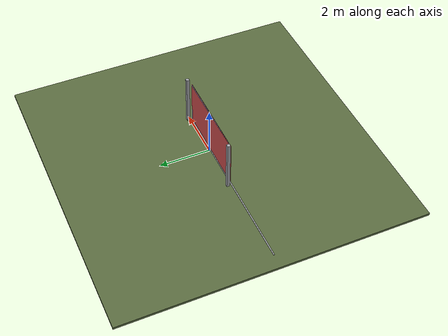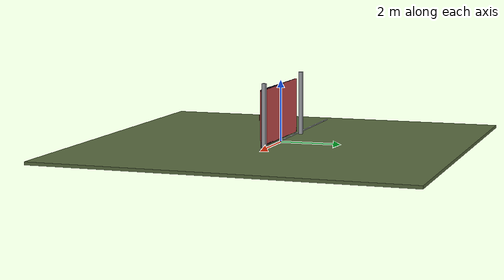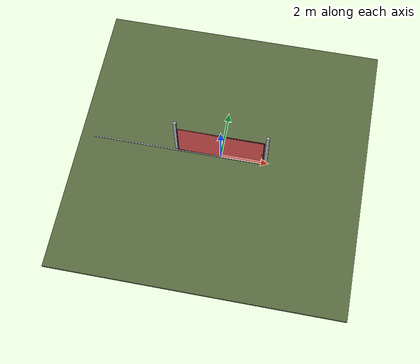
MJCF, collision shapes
<?xml version="1.0" ?>
<mujoco model="db0613_gate_sliding_simple">
  <compiler angle="radian" meshdir="../../hardware" texturedir="../../textures" autolimits="true" inertiafromgeom="false"/>
  <option timestep="0.002" integrator="implicitfast" cone="elliptic" impratio="10" noslip_iterations="3">
    <flag multiccd="enable"/>
  </option>
  <size memory="16M"/>
  <default>
    <geom condim="4" solref="0.005 1" solimp="0.95 0.99 0.001"/>
    <joint solreflimit="0.005 1" solimplimit="0.95 0.99 0.001"/>
    <tendon solreflimit="0.005 1"/>
    <equality solref="0.002 1"/>
  </default>
  <visual>
    <headlight ambient="0.4 0.4 0.4" diffuse="0.7 0.7 0.7" specular="0.2 0.2 0.2"/>
    <quality shadowsize="4096"/>
    <map znear="0.01" zfar="60"/>
  </visual>
  <asset>
    <mesh name="pull_1e5d69a91a" file="pull_1e5d69a91a.obj"/>
    <material name="mat_floor" rgba="0.35 0.42 0.25 1" specular="0.2" shininess="0.15" reflectance="0"/>
    <material name="mat_wall" rgba="0.78 0.76 0.7 1" specular="0.2" shininess="0.1" reflectance="0"/>
    <material name="mat_frame" rgba="0.65 0.66 0.68 1" specular="0.74" shininess="0.5" reflectance="0.36"/>
    <material name="mat_track" rgba="0.8 0.81 0.83 1" specular="0.8" shininess="0.6" reflectance="0.4"/>
    <material name="mat_leaf" rgba="0.09 0.13 0.28 1" specular="0.23" shininess="0.39" reflectance="0.02"/>
    <material name="mat_roller" rgba="0.65 0.66 0.68 1" specular="0.74" shininess="0.5" reflectance="0.36"/>
    <material name="mat_op_stainless" rgba="0.75 0.76 0.77 1" specular="0.8" shininess="0.65" reflectance="0.4"/>
    <material name="mat_hook" rgba="0.75 0.76 0.77 1" specular="0.8" shininess="0.65" reflectance="0.4"/>
    <texture name="skybox" type="skybox" builtin="gradient" rgb1="0.6 0.7 0.85" rgb2="0.9 0.92 0.95" width="256" height="256"/>
  </asset>
  <worldbody>
    <light name="sun" pos="1.5 -2.5 4" dir="-0.3 0.5 -0.8" directional="true" diffuse="0.8 0.8 0.8" specular="0.3 0.3 0.3" castshadow="true"/>
    <light name="fill" pos="-1.5 2.5 3" dir="0.3 -0.5 -0.7" directional="true" diffuse="0.35 0.35 0.4" castshadow="false"/>
    <camera name="robot_view" pos="0 -4.046875 2.058125" xyaxes="1 0 0 0 0.26963 0.962964" fovy="52"/>
    <camera name="far_view" pos="0 4.046875 2.058125" xyaxes="-1 0 0 0 -0.26963 0.962964" fovy="52"/>
    <camera name="iso" pos="3.075625 -3.399375 2.705625" xyaxes="0.741536 0.670913 0 -0.242917 0.268487 0.932151" fovy="46"/>
    <camera name="detail_handle" pos="1.96 -1.2325 1.35" xyaxes="0.975133 0.221621 0 -0.065674 0.288965 0.955084" fovy="38"/>
    <geom name="floor" type="box" size="6 6 0.05" pos="0 0 -0.05" material="mat_floor" group="0" contype="1" conaffinity="1" friction="0.8 0.005 0.0001" density="2400"/>
    <geom name="post_l" type="box" size="0.06 0.06 1.05" pos="-1.885 0.08 1.05" material="mat_frame" group="0" contype="1" conaffinity="1" friction="0.6 0.005 0.0001" density="7850"/>
    <geom name="post_r" type="box" size="0.06 0.06 1.05" pos="1.885 0.08 1.05" material="mat_frame" group="0" contype="1" conaffinity="1" friction="0.6 0.005 0.0001" density="7850"/>
    <geom name="gate_rail" type="box" size="3.65 0.02 0.012" pos="-1.8 -0.06 0.012" material="mat_track" group="0" contype="1" conaffinity="1" friction="0.6 0.005 0.0001" density="2700"/>
    <site name="approach_point" pos="0 -1.5 0" quat="1 0 0 0" size="0.05" rgba="0.2 0.9 0.2 0.5" group="4"/>
    <site name="goal_point" pos="0 1.5 0" quat="1 0 0 0" size="0.05" rgba="0.2 0.9 0.2 0.5" group="4"/>
    <site name="door_plane_center" pos="0 0 0.925" quat="1 0 0 0" size="0.02" rgba="0.2 0.9 0.2 0.5" group="4"/>
    <body name="leaf" pos="0 -0.06 0">
      <inertial pos="0.003907 -0.000154 0.973762" mass="182.588" quat="0.707112 -0.707102 -0.00007 -0.000239" diaginertia="49.901799889 199.97263414 249.851690531"/>
      <joint name="leaf_slide" type="slide" axis="-1 0 0" limited="true" range="0 3.6" damping="11.1294" frictionloss="58.19374" armature="0.5"/>
      <geom name="leaf_slab_col" type="box" size="1.8 0.0125 0.9" pos="0 0 0.98" material="mat_leaf" group="3" contype="1" conaffinity="1" rgba="0.8 0.3 0.3 0.25" friction="0.45 0.005 0.0001" density="1"/>
      <geom name="leaf_rail_b" type="box" size="1.8 0.0125 0.0225" pos="0 0 0.1025" material="mat_leaf" group="1" contype="0" conaffinity="0" density="1"/>
      <geom name="leaf_rail_t" type="box" size="1.8 0.0125 0.0225" pos="0 0 1.8575" material="mat_leaf" group="1" contype="0" conaffinity="0" density="1"/>
      <geom name="leaf_stile_h" type="box" size="0.0225 0.0125 0.9" pos="-1.7775 0 0.98" material="mat_leaf" group="1" contype="0" conaffinity="0" density="1"/>
      <geom name="leaf_stile_l" type="box" size="0.0225 0.0125 0.9" pos="1.7775 0 0.98" material="mat_leaf" group="1" contype="0" conaffinity="0" density="1"/>
      <geom name="leaf_picket_0" type="box" size="0.02 0.00875 0.8865" pos="-1.698387 0 1" material="mat_leaf" group="1" contype="0" conaffinity="0" density="1"/>
      <geom name="leaf_picket_1" type="box" size="0.02 0.00875 0.8865" pos="-1.585161 0 1" material="mat_leaf" group="1" contype="0" conaffinity="0" density="1"/>
      <geom name="leaf_picket_2" type="box" size="0.02 0.00875 0.8865" pos="-1.471935 0 1" material="mat_leaf" group="1" contype="0" conaffinity="0" density="1"/>
      <geom name="leaf_picket_3" type="box" size="0.02 0.00875 0.8865" pos="-1.35871 0 1" material="mat_leaf" group="1" contype="0" conaffinity="0" density="1"/>
      <geom name="leaf_picket_4" type="box" size="0.02 0.00875 0.8865" pos="-1.245484 0 1" material="mat_leaf" group="1" contype="0" conaffinity="0" density="1"/>
      <geom name="leaf_picket_5" type="box" size="0.02 0.00875 0.8865" pos="-1.132258 0 1" material="mat_leaf" group="1" contype="0" conaffinity="0" density="1"/>
      <geom name="leaf_picket_6" type="box" size="0.02 0.00875 0.8865" pos="-1.019032 0 1" material="mat_leaf" group="1" contype="0" conaffinity="0" density="1"/>
      <geom name="leaf_picket_7" type="box" size="0.02 0.00875 0.8865" pos="-0.905806 0 1" material="mat_leaf" group="1" contype="0" conaffinity="0" density="1"/>
      <geom name="leaf_picket_8" type="box" size="0.02 0.00875 0.8865" pos="-0.792581 0 1" material="mat_leaf" group="1" contype="0" conaffinity="0" density="1"/>
      <geom name="leaf_picket_9" type="box" size="0.02 0.00875 0.8865" pos="-0.679355 0 1" material="mat_leaf" group="1" contype="0" conaffinity="0" density="1"/>
      <geom name="leaf_picket_10" type="box" size="0.02 0.00875 0.8865" pos="-0.566129 0 1" material="mat_leaf" group="1" contype="0" conaffinity="0" density="1"/>
      <geom name="leaf_picket_11" type="box" size="0.02 0.00875 0.8865" pos="-0.452903 0 1" material="mat_leaf" group="1" contype="0" conaffinity="0" density="1"/>
      <geom name="leaf_picket_12" type="box" size="0.02 0.00875 0.8865" pos="-0.339677 0 1" material="mat_leaf" group="1" contype="0" conaffinity="0" density="1"/>
      <geom name="leaf_picket_13" type="box" size="0.02 0.00875 0.8865" pos="-0.226452 0 1" material="mat_leaf" group="1" contype="0" conaffinity="0" density="1"/>
      <geom name="leaf_picket_14" type="box" size="0.02 0.00875 0.8865" pos="-0.113226 0 1" material="mat_leaf" group="1" contype="0" conaffinity="0" density="1"/>
      <geom name="leaf_picket_15" type="box" size="0.02 0.00875 0.8865" pos="0 0 1" material="mat_leaf" group="1" contype="0" conaffinity="0" density="1"/>
      <geom name="leaf_picket_16" type="box" size="0.02 0.00875 0.8865" pos="0.113226 0 1" material="mat_leaf" group="1" contype="0" conaffinity="0" density="1"/>
      <geom name="leaf_picket_17" type="box" size="0.02 0.00875 0.8865" pos="0.226452 0 1" material="mat_leaf" group="1" contype="0" conaffinity="0" density="1"/>
      <geom name="leaf_picket_18" type="box" size="0.02 0.00875 0.8865" pos="0.339677 0 1" material="mat_leaf" group="1" contype="0" conaffinity="0" density="1"/>
      <geom name="leaf_picket_19" type="box" size="0.02 0.00875 0.8865" pos="0.452903 0 1" material="mat_leaf" group="1" contype="0" conaffinity="0" density="1"/>
      <geom name="leaf_picket_20" type="box" size="0.02 0.00875 0.8865" pos="0.566129 0 1" material="mat_leaf" group="1" contype="0" conaffinity="0" density="1"/>
      <geom name="leaf_picket_21" type="box" size="0.02 0.00875 0.8865" pos="0.679355 0 1" material="mat_leaf" group="1" contype="0" conaffinity="0" density="1"/>
      <geom name="leaf_picket_22" type="box" size="0.02 0.00875 0.8865" pos="0.792581 0 1" material="mat_leaf" group="1" contype="0" conaffinity="0" density="1"/>
      <geom name="leaf_picket_23" type="box" size="0.02 0.00875 0.8865" pos="0.905806 0 1" material="mat_leaf" group="1" contype="0" conaffinity="0" density="1"/>
      <geom name="leaf_picket_24" type="box" size="0.02 0.00875 0.8865" pos="1.019032 0 1" material="mat_leaf" group="1" contype="0" conaffinity="0" density="1"/>
      <geom name="leaf_picket_25" type="box" size="0.02 0.00875 0.8865" pos="1.132258 0 1" material="mat_leaf" group="1" contype="0" conaffinity="0" density="1"/>
      <geom name="leaf_picket_26" type="box" size="0.02 0.00875 0.8865" pos="1.245484 0 1" material="mat_leaf" group="1" contype="0" conaffinity="0" density="1"/>
      <geom name="leaf_picket_27" type="box" size="0.02 0.00875 0.8865" pos="1.35871 0 1" material="mat_leaf" group="1" contype="0" conaffinity="0" density="1"/>
      <geom name="leaf_picket_28" type="box" size="0.02 0.00875 0.8865" pos="1.471935 0 1" material="mat_leaf" group="1" contype="0" conaffinity="0" density="1"/>
      <geom name="leaf_picket_29" type="box" size="0.02 0.00875 0.8865" pos="1.585161 0 1" material="mat_leaf" group="1" contype="0" conaffinity="0" density="1"/>
      <geom name="leaf_picket_30" type="box" size="0.02 0.00875 0.8865" pos="1.698387 0 1" material="mat_leaf" group="1" contype="0" conaffinity="0" density="1"/>
      <geom name="leaf_roller_0" type="cylinder" size="0.04 0.008" pos="-1.66 0 0.064" quat="0.707107 -0.707107 0 0" material="mat_roller" group="1" contype="0" conaffinity="0" density="7850"/>
      <geom name="leaf_roller_1" type="cylinder" size="0.04 0.008" pos="1.58 0 0.064" quat="0.707107 -0.707107 0 0" material="mat_roller" group="1" contype="0" conaffinity="0" density="7850"/>
      <geom name="leaf_pull_n" type="mesh" mesh="pull_1e5d69a91a" pos="1.71 -0.0125 1" quat="0.707107 0.707107 0 0" material="mat_op_stainless" group="1" contype="0" conaffinity="0" density="3000"/>
      <geom name="leaf_pull_col_n" type="capsule" size="0.0095 0.08" pos="1.71 -0.0725 1" material="mat_op_stainless" group="3" contype="1" conaffinity="1" rgba="0.8 0.3 0.3 0.25" friction="0.7 0.01 0.0001" density="3000"/>
      <site name="leaf_pull_grip_n" pos="1.71 -0.0725 1" quat="1 0 0 0" size="0.012" rgba="0.2 0.9 0.2 0.5" group="4"/>
      <site name="leaf_edge_mid" pos="1.8 0 0.98" quat="1 0 0 0" size="0.02" rgba="0.2 0.9 0.2 0.5" group="4"/>
    </body>
  </worldbody>
  <sensor>
    <jointpos name="leaf_slide_pos" joint="leaf_slide"/>
    <jointvel name="leaf_slide_vel" joint="leaf_slide"/>
  </sensor>
</mujoco>
